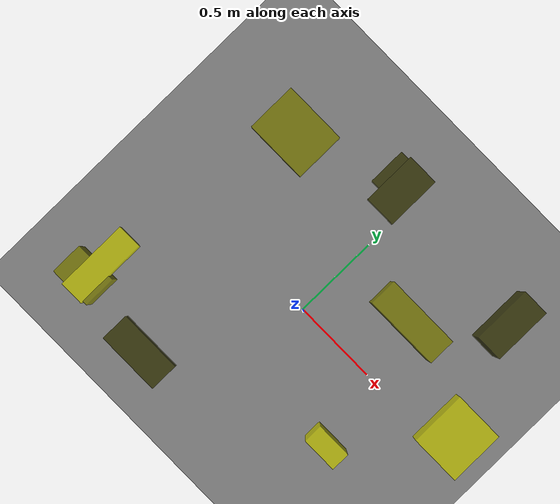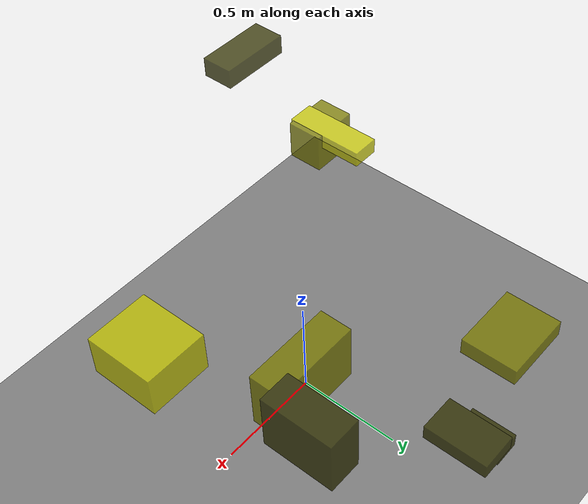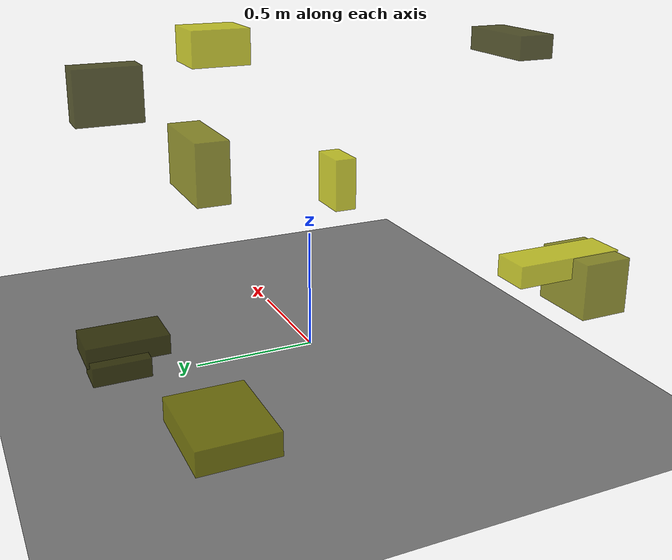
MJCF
<?xml version="1.0"?>
<mujoco model="obstacle_scene">
  <compiler angle="radian" coordinate="local"/>
  <option timestep="0.001" gravity="0 0 -9.81"/>

  <asset>
    <material name="obstacle_mat" rgba="0.8 0.8 0.0 0.8"/>
    <material name="ground_mat" rgba="0.5 0.5 0.5 1"/>
  </asset>

  <worldbody>
    <!-- Ground plane -->
    <geom name="ground" type="plane" size="3 3 0.1" material="ground_mat"/>

    <!-- Obstacles -->
    <body name="obstacle_0" pos="-0.409389 -0.644789 1.301190">
      <geom name="obs_0" type="box" size="0.158664 0.070721 0.043830" rgba="0.2 0.2 0.0 0.8"/>
    </body>
    <body name="obstacle_1" pos="-0.705824 0.633855 0.145485">
      <geom name="obs_1" type="box" size="0.185369 0.147486 0.045557" rgba="0.5 0.5 0.0 0.8"/>
    </body>
    <body name="obstacle_2" pos="-0.881622 -0.561276 0.596534">
      <geom name="obs_2" type="box" size="0.067732 0.203281 0.039354" rgba="0.8 0.8 0.0 0.8"/>
    </body>
    <body name="obstacle_3" pos="0.706067 0.657628 1.007661">
      <geom name="obs_3" type="box" size="0.069601 0.151646 0.125321" rgba="0.2 0.2 0.0 0.8"/>
    </body>
    <body name="obstacle_4" pos="-0.905697 -0.661026 0.532558">
      <geom name="obs_4" type="box" size="0.118729 0.090097 0.100675" rgba="0.5 0.5 0.0 0.8"/>
    </body>
    <body name="obstacle_5" pos="0.883328 0.106530 1.165897">
      <geom name="obs_5" type="box" size="0.126430 0.141862 0.085314" rgba="0.8 0.8 0.0 0.8"/>
    </body>
    <body name="obstacle_6" pos="-0.172319 0.852483 0.159594">
      <geom name="obs_6" type="box" size="0.063992 0.109662 0.036712" rgba="0.2 0.2 0.0 0.8"/>
    </body>
    <body name="obstacle_7" pos="0.394027 0.345748 0.742011">
      <geom name="obs_7" type="box" size="0.202439 0.073659 0.136308" rgba="0.5 0.5 0.0 0.8"/>
    </body>
    <body name="obstacle_8" pos="0.561338 -0.390755 0.532489">
      <geom name="obs_8" type="box" size="0.098149 0.052170 0.124944" rgba="0.8 0.8 0.0 0.8"/>
    </body>
    <body name="obstacle_9" pos="-0.089438 0.813507 0.211739">
      <geom name="obs_9" type="box" size="0.093211 0.158159 0.038703" rgba="0.2 0.2 0.0 0.8"/>
    </body>
  </worldbody>
</mujoco>
